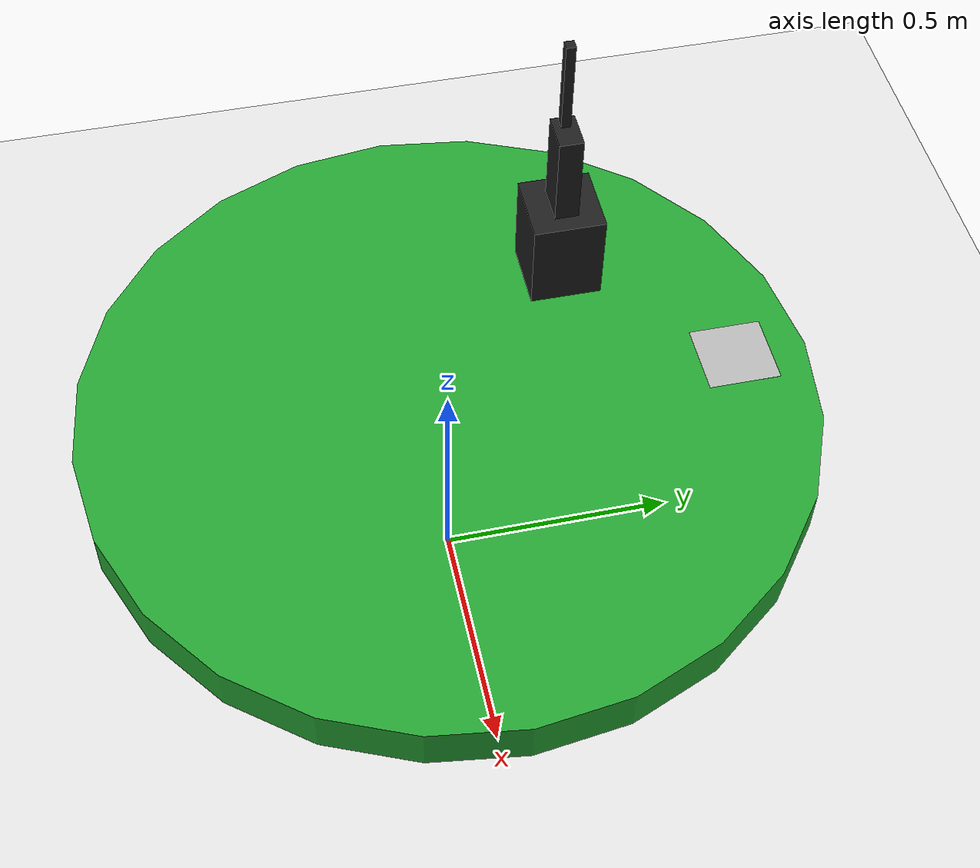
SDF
<sdf version="1.7">
 <world name="default">
  <include>
   <name>aruco_marker</name>
   <uri>model://aruco_marker</uri>
   <pose>0 0.6 0.5 0 -1.570856 1.570856</pose>
  </include>
  <model name="ground_plane">
   <static>1</static>
   <link name="link">
    <collision name="collision">
     <geometry><plane><normal>0 0 1</normal><size>100 100</size></plane></geometry>
     <surface>
      <contact><collide_bitmask>65535</collide_bitmask></contact>
      <friction><ode><mu>100</mu><mu2>50</mu2></ode></friction>
     </surface>
    </collision>
    <visual name="visual">
     <cast_shadows>0</cast_shadows>
     <geometry><plane><normal>0 0 1</normal><size>100 100</size></plane></geometry>
     <material>
      <script><uri>file://media/materials/scripts/gazebo.material</uri><name>Gazebo/Grey</name></script>
     </material>
    </visual>
   </link>
  </model>
  <light name="sun" type="directional">
   <pose>0 0 10 0 -0 0</pose>
   <diffuse>0.8 0.8 0.8 1</diffuse>
   <specular>0.2 0.2 0.2 1</specular>
   <attenuation>
    <range>1000</range>
    <constant>0.9</constant>
    <linear>0.01</linear>
    <quadratic>0.001</quadratic>
   </attenuation>
   <direction>-0.5 0.1 -0.9</direction>
   <spot><inner_angle>0</inner_angle><outer_angle>0</outer_angle><falloff>0</falloff></spot>
  </light>
  <physics type="ode">
   <max_step_size>0.001</max_step_size>
   <real_time_factor>1</real_time_factor>
   <real_time_update_rate>1000</real_time_update_rate>
  </physics>
  <gravity>0 0 -9.81</gravity>
  <magnetic_field>6e-06 2.3e-05 -4.2e-05</magnetic_field>
  <atmosphere type="adiabatic"/>
  <scene><ambient>0.4 0.4 0.4 1</ambient><background>0.7 0.7 0.7 1</background><shadows>1</shadows></scene>
  <audio><device>default</device></audio>
  <spherical_coordinates>
   <surface_model>EARTH_WGS84</surface_model>
   <latitude_deg>0</latitude_deg>
   <longitude_deg>0</longitude_deg>
   <elevation>0</elevation>
   <heading_deg>0</heading_deg>
  </spherical_coordinates>
  <model name="table_top">
   <pose>0 0 0.45 0 0 0</pose>
   <static>1</static>
   <link name="link">
    <collision name="collision">
     <geometry><cylinder><radius>0.750001</radius><length>0.1</length></cylinder></geometry>
    </collision>
    <visual name="visual">
     <geometry><cylinder><radius>0.750001</radius><length>0.1</length></cylinder></geometry>
     <material>
      <script><name>Gazebo/Green</name><uri>file://media/materials/scripts/gazebo.material</uri></script>
     </material>
    </visual>
    <inertial>
     <inertia><ixx>1</ixx><ixy>0</ixy><ixz>0</ixz><iyy>1</iyy><iyz>0</iyz><izz>1</izz></inertia>
     <mass>1</mass>
    </inertial>
   </link>
  </model>
  <model name="box1">
   <pose>-0.3 0.3 0.6 0 0 0</pose>
   <static>1</static>
   <link name="link">
    <collision name="collision"><geometry><box><size>0.15 0.15 0.2</size></box></geometry></collision>
    <visual name="visual">
     <geometry><box><size>0.15 0.15 0.2</size></box></geometry>
     <material>
      <script><name>Gazebo/Black</name><uri>file://media/materials/scripts/gazebo.material</uri></script>
     </material>
    </visual>
    <inertial>
     <inertia><ixx>1</ixx><ixy>0</ixy><ixz>0</ixz><iyy>1</iyy><iyz>0</iyz><izz>1</izz></inertia>
     <mass>1</mass>
    </inertial>
   </link>
  </model>
  <model name="box2">
   <pose>-0.3 0.3 0.8 0 0 0</pose>
   <static>1</static>
   <link name="link">
    <collision name="collision"><geometry><box><size>0.08 0.05 0.2</size></box></geometry></collision>
    <visual name="visual">
     <geometry><box><size>0.08 0.05 0.2</size></box></geometry>
     <material>
      <script><name>Gazebo/Black</name><uri>file://media/materials/scripts/gazebo.material</uri></script>
     </material>
    </visual>
    <inertial>
     <inertia><ixx>1</ixx><ixy>0</ixy><ixz>0</ixz><iyy>1</iyy><iyz>0</iyz><izz>1</izz></inertia>
     <mass>1</mass>
    </inertial>
   </link>
  </model>
  <model name="box3">
   <pose>-0.32 0.3 1.0 0 0 0</pose>
   <static>1</static>
   <link name="link">
    <collision name="collision"><geometry><box><size>0.02 0.02 0.2</size></box></geometry></collision>
    <visual name="visual">
     <geometry><box><size>0.02 0.02 0.2</size></box></geometry>
     <material>
      <script><name>Gazebo/Black</name><uri>file://media/materials/scripts/gazebo.material</uri></script>
     </material>
    </visual>
    <inertial>
     <inertia><ixx>1</ixx><ixy>0</ixy><ixz>0</ixz><iyy>1</iyy><iyz>0</iyz><izz>1</izz></inertia>
     <mass>1</mass>
    </inertial>
   </link>
  </model>
  <model name="table_leg">
   <static>1</static>
   <link name="link">
    <collision name="collision">
     <geometry><cylinder><radius>0.1</radius><length>0.43</length></cylinder></geometry>
    </collision>
    <visual name="visual">
     <geometry><cylinder><radius>0.1</radius><length>0.43</length></cylinder></geometry>
     <material>
      <script><name>Gazebo/Black</name><uri>file://media/materials/scripts/gazebo.material</uri></script>
     </material>
    </visual>
   </link>
  </model>
 </world>
</sdf>

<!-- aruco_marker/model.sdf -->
<sdf version="1.6">
  <model name="aruco_marker">
    <link name="link">
      <inertial>
        <pose>0 0 0 0 0 0</pose>
        <mass>0.001</mass>
        <inertia>
          <ixx>3.7499999999999997e-06</ixx>
          <ixy>0.0</ixy>
          <ixz>0.0</ixz>
          <iyy>1.8750008333333333e-06</iyy>
          <iyz>0.0</iyz>
          <izz>1.8750008333333333e-06</izz>
        </inertia>
      </inertial>
      <visual name="front_visual">
        <pose>0.00005 0 0 0 0 0</pose>
        <geometry>
          <box>
            <size>0.0001 0.15 0.15</size>
          </box>
        </geometry>
        <material>
          <script>
            <uri>model://aruco_marker/materials/scripts</uri>
            <uri>model://aruco_marker/materials/textures</uri>
            <name>Marker</name>
          </script>
        </material>
      </visual>
      <!-- Hide the marker from the back -->
      <visual name="rear_visual">
        <pose>-0.00005 0 0 0 0 0</pose>
        <geometry>
          <box>
            <size>0.0001 0.15 0.15</size>
          </box>
        </geometry>
      </visual>
      <collision name="collision">
        <pose>0 0 0 0 0 0</pose>
        <geometry>
          <box>
            <size>0.0001 0.15 0.15</size>
          </box>
        </geometry>
      </collision>
    </link>
  </model>
</sdf>
